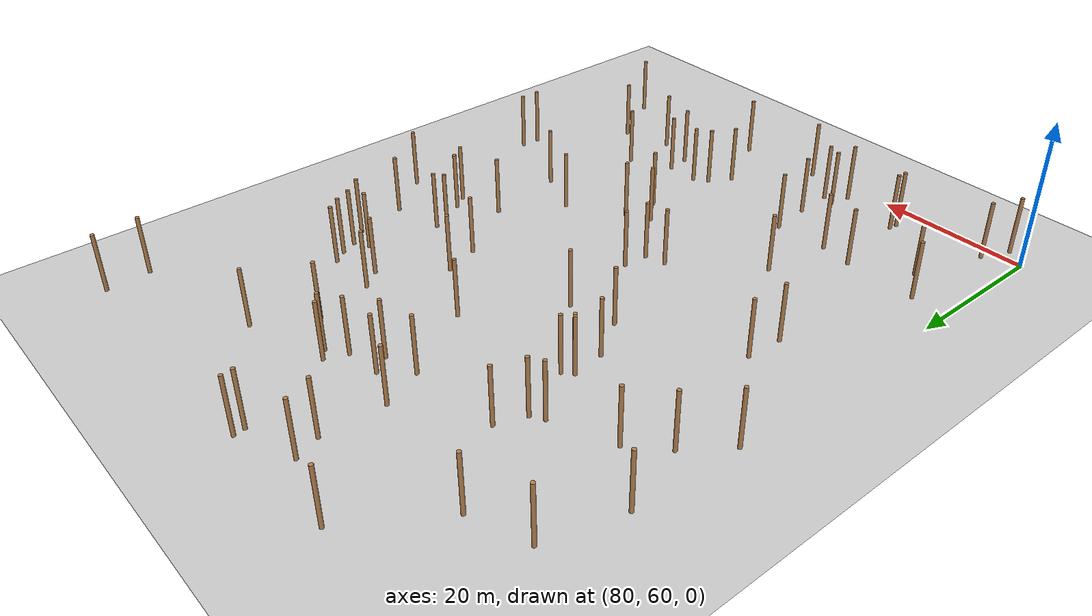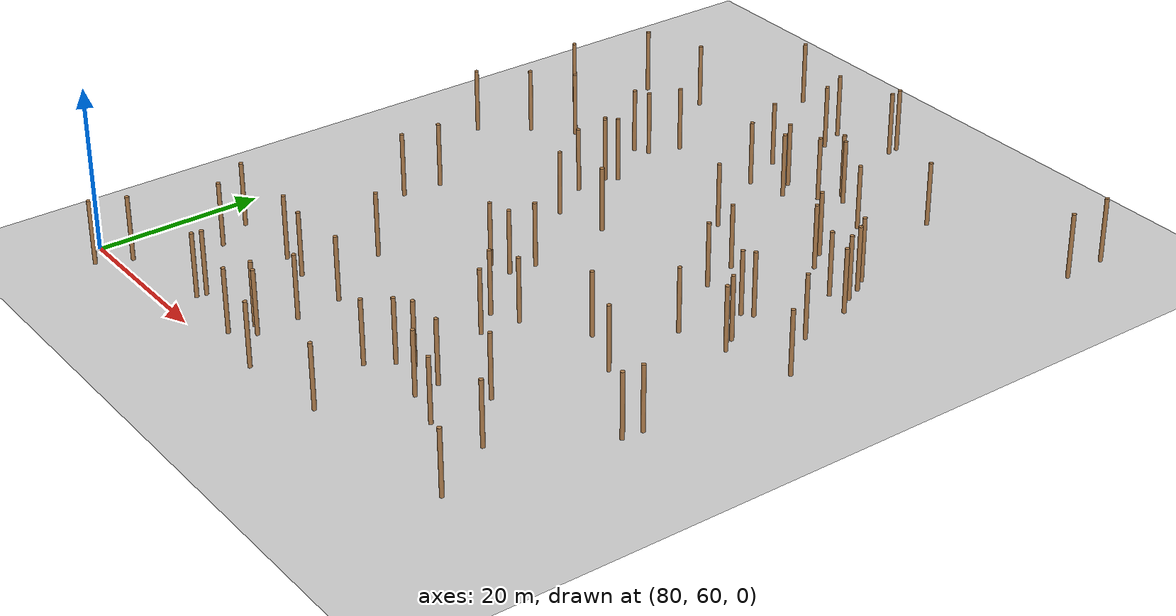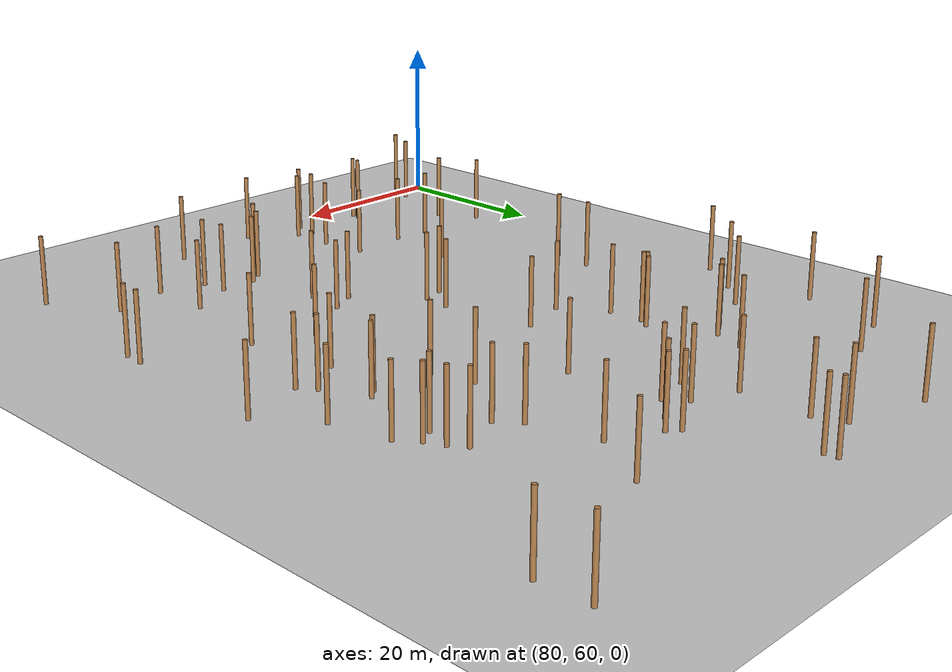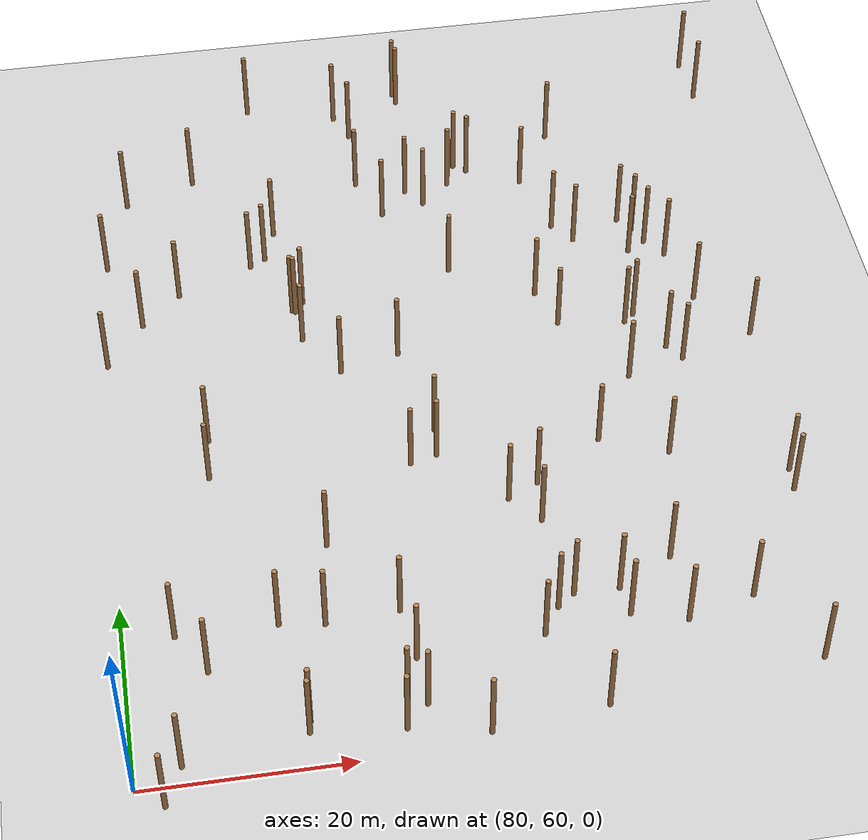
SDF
<sdf version="1.5">
 <world name="padure_tactica">
  <include><uri>model://sun</uri></include>
  <include><uri>model://ground_plane</uri></include>
  <model name="tree_9">
   <static>true</static>
   <pose>84.58 116.29 4.0 0 0 0</pose>
   <link name="link">
    <collision name="collision">
     <geometry><cylinder><radius>0.25</radius><length>8.0</length></cylinder></geometry>
    </collision>
    <visual name="visual">
     <geometry><cylinder><radius>0.25</radius><length>8.0</length></cylinder></geometry>
     <material>
      <script><uri>file://media/materials/scripts/gazebo.material</uri><name>Gazebo/Wood</name></script>
     </material>
    </visual>
   </link>
  </model>
  <model name="tree_64">
   <static>true</static>
   <pose>137.72 122.76 4.0 0 0 0</pose>
   <link name="link">
    <collision name="collision">
     <geometry><cylinder><radius>0.25</radius><length>8.0</length></cylinder></geometry>
    </collision>
    <visual name="visual">
     <geometry><cylinder><radius>0.25</radius><length>8.0</length></cylinder></geometry>
     <material>
      <script><uri>file://media/materials/scripts/gazebo.material</uri><name>Gazebo/Wood</name></script>
     </material>
    </visual>
   </link>
  </model>
  <model name="tree_92">
   <static>true</static>
   <pose>138.91 103.22 4.0 0 0 0</pose>
   <link name="link">
    <collision name="collision">
     <geometry><cylinder><radius>0.25</radius><length>8.0</length></cylinder></geometry>
    </collision>
    <visual name="visual">
     <geometry><cylinder><radius>0.25</radius><length>8.0</length></cylinder></geometry>
     <material>
      <script><uri>file://media/materials/scripts/gazebo.material</uri><name>Gazebo/Wood</name></script>
     </material>
    </visual>
   </link>
  </model>
  <model name="tree_94">
   <static>true</static>
   <pose>104.10 106.70 4.0 0 0 0</pose>
   <link name="link">
    <collision name="collision">
     <geometry><cylinder><radius>0.25</radius><length>8.0</length></cylinder></geometry>
    </collision>
    <visual name="visual">
     <geometry><cylinder><radius>0.25</radius><length>8.0</length></cylinder></geometry>
     <material>
      <script><uri>file://media/materials/scripts/gazebo.material</uri><name>Gazebo/Wood</name></script>
     </material>
    </visual>
   </link>
  </model>
  <model name="tree_140">
   <static>true</static>
   <pose>129.28 124.56 4.0 0 0 0</pose>
   <link name="link">
    <collision name="collision">
     <geometry><cylinder><radius>0.25</radius><length>8.0</length></cylinder></geometry>
    </collision>
    <visual name="visual">
     <geometry><cylinder><radius>0.25</radius><length>8.0</length></cylinder></geometry>
     <material>
      <script><uri>file://media/materials/scripts/gazebo.material</uri><name>Gazebo/Wood</name></script>
     </material>
    </visual>
   </link>
  </model>
  <model name="tree_146">
   <static>true</static>
   <pose>108.14 145.77 4.0 0 0 0</pose>
   <link name="link">
    <collision name="collision">
     <geometry><cylinder><radius>0.25</radius><length>8.0</length></cylinder></geometry>
    </collision>
    <visual name="visual">
     <geometry><cylinder><radius>0.25</radius><length>8.0</length></cylinder></geometry>
     <material>
      <script><uri>file://media/materials/scripts/gazebo.material</uri><name>Gazebo/Wood</name></script>
     </material>
    </visual>
   </link>
  </model>
  <model name="tree_151">
   <static>true</static>
   <pose>143.23 64.62 4.0 0 0 0</pose>
   <link name="link">
    <collision name="collision">
     <geometry><cylinder><radius>0.25</radius><length>8.0</length></cylinder></geometry>
    </collision>
    <visual name="visual">
     <geometry><cylinder><radius>0.25</radius><length>8.0</length></cylinder></geometry>
     <material>
      <script><uri>file://media/materials/scripts/gazebo.material</uri><name>Gazebo/Wood</name></script>
     </material>
    </visual>
   </link>
  </model>
  <model name="tree_164">
   <static>true</static>
   <pose>146.61 105.64 4.0 0 0 0</pose>
   <link name="link">
    <collision name="collision">
     <geometry><cylinder><radius>0.25</radius><length>8.0</length></cylinder></geometry>
    </collision>
    <visual name="visual">
     <geometry><cylinder><radius>0.25</radius><length>8.0</length></cylinder></geometry>
     <material>
      <script><uri>file://media/materials/scripts/gazebo.material</uri><name>Gazebo/Wood</name></script>
     </material>
    </visual>
   </link>
  </model>
  <model name="tree_186">
   <static>true</static>
   <pose>115.34 148.96 4.0 0 0 0</pose>
   <link name="link">
    <collision name="collision">
     <geometry><cylinder><radius>0.25</radius><length>8.0</length></cylinder></geometry>
    </collision>
    <visual name="visual">
     <geometry><cylinder><radius>0.25</radius><length>8.0</length></cylinder></geometry>
     <material>
      <script><uri>file://media/materials/scripts/gazebo.material</uri><name>Gazebo/Wood</name></script>
     </material>
    </visual>
   </link>
  </model>
  <model name="tree_189">
   <static>true</static>
   <pose>104.97 65.79 4.0 0 0 0</pose>
   <link name="link">
    <collision name="collision">
     <geometry><cylinder><radius>0.25</radius><length>8.0</length></cylinder></geometry>
    </collision>
    <visual name="visual">
     <geometry><cylinder><radius>0.25</radius><length>8.0</length></cylinder></geometry>
     <material>
      <script><uri>file://media/materials/scripts/gazebo.material</uri><name>Gazebo/Wood</name></script>
     </material>
    </visual>
   </link>
  </model>
  <model name="tree_194">
   <static>true</static>
   <pose>96.05 64.82 4.0 0 0 0</pose>
   <link name="link">
    <collision name="collision">
     <geometry><cylinder><radius>0.25</radius><length>8.0</length></cylinder></geometry>
    </collision>
    <visual name="visual">
     <geometry><cylinder><radius>0.25</radius><length>8.0</length></cylinder></geometry>
     <material>
      <script><uri>file://media/materials/scripts/gazebo.material</uri><name>Gazebo/Wood</name></script>
     </material>
    </visual>
   </link>
  </model>
  <model name="tree_212">
   <static>true</static>
   <pose>120.30 73.95 4.0 0 0 0</pose>
   <link name="link">
    <collision name="collision">
     <geometry><cylinder><radius>0.25</radius><length>8.0</length></cylinder></geometry>
    </collision>
    <visual name="visual">
     <geometry><cylinder><radius>0.25</radius><length>8.0</length></cylinder></geometry>
     <material>
      <script><uri>file://media/materials/scripts/gazebo.material</uri><name>Gazebo/Wood</name></script>
     </material>
    </visual>
   </link>
  </model>
  <model name="tree_213">
   <static>true</static>
   <pose>126.78 72.15 4.0 0 0 0</pose>
   <link name="link">
    <collision name="collision">
     <geometry><cylinder><radius>0.25</radius><length>8.0</length></cylinder></geometry>
    </collision>
    <visual name="visual">
     <geometry><cylinder><radius>0.25</radius><length>8.0</length></cylinder></geometry>
     <material>
      <script><uri>file://media/materials/scripts/gazebo.material</uri><name>Gazebo/Wood</name></script>
     </material>
    </visual>
   </link>
  </model>
  <model name="tree_227">
   <static>true</static>
   <pose>132.94 101.59 4.0 0 0 0</pose>
   <link name="link">
    <collision name="collision">
     <geometry><cylinder><radius>0.25</radius><length>8.0</length></cylinder></geometry>
    </collision>
    <visual name="visual">
     <geometry><cylinder><radius>0.25</radius><length>8.0</length></cylinder></geometry>
     <material>
      <script><uri>file://media/materials/scripts/gazebo.material</uri><name>Gazebo/Wood</name></script>
     </material>
    </visual>
   </link>
  </model>
  <model name="tree_252">
   <static>true</static>
   <pose>136.49 124.45 4.0 0 0 0</pose>
   <link name="link">
    <collision name="collision">
     <geometry><cylinder><radius>0.25</radius><length>8.0</length></cylinder></geometry>
    </collision>
    <visual name="visual">
     <geometry><cylinder><radius>0.25</radius><length>8.0</length></cylinder></geometry>
     <material>
      <script><uri>file://media/materials/scripts/gazebo.material</uri><name>Gazebo/Wood</name></script>
     </material>
    </visual>
   </link>
  </model>
  <model name="tree_254">
   <static>true</static>
   <pose>106.71 65.12 4.0 0 0 0</pose>
   <link name="link">
    <collision name="collision">
     <geometry><cylinder><radius>0.25</radius><length>8.0</length></cylinder></geometry>
    </collision>
    <visual name="visual">
     <geometry><cylinder><radius>0.25</radius><length>8.0</length></cylinder></geometry>
     <material>
      <script><uri>file://media/materials/scripts/gazebo.material</uri><name>Gazebo/Wood</name></script>
     </material>
    </visual>
   </link>
  </model>
  <model name="tree_282">
   <static>true</static>
   <pose>131.98 70.68 4.0 0 0 0</pose>
   <link name="link">
    <collision name="collision">
     <geometry><cylinder><radius>0.25</radius><length>8.0</length></cylinder></geometry>
    </collision>
    <visual name="visual">
     <geometry><cylinder><radius>0.25</radius><length>8.0</length></cylinder></geometry>
     <material>
      <script><uri>file://media/materials/scripts/gazebo.material</uri><name>Gazebo/Wood</name></script>
     </material>
    </visual>
   </link>
  </model>
  <model name="tree_295">
   <static>true</static>
   <pose>118.02 87.49 4.0 0 0 0</pose>
   <link name="link">
    <collision name="collision">
     <geometry><cylinder><radius>0.25</radius><length>8.0</length></cylinder></geometry>
    </collision>
    <visual name="visual">
     <geometry><cylinder><radius>0.25</radius><length>8.0</length></cylinder></geometry>
     <material>
      <script><uri>file://media/materials/scripts/gazebo.material</uri><name>Gazebo/Wood</name></script>
     </material>
    </visual>
   </link>
  </model>
  <model name="tree_299">
   <static>true</static>
   <pose>91.44 137.42 4.0 0 0 0</pose>
   <link name="link">
    <collision name="collision">
     <geometry><cylinder><radius>0.25</radius><length>8.0</length></cylinder></geometry>
    </collision>
    <visual name="visual">
     <geometry><cylinder><radius>0.25</radius><length>8.0</length></cylinder></geometry>
     <material>
      <script><uri>file://media/materials/scripts/gazebo.material</uri><name>Gazebo/Wood</name></script>
     </material>
    </visual>
   </link>
  </model>
  <model name="tree_317">
   <static>true</static>
   <pose>112.28 97.45 4.0 0 0 0</pose>
   <link name="link">
    <collision name="collision">
     <geometry><cylinder><radius>0.25</radius><length>8.0</length></cylinder></geometry>
    </collision>
    <visual name="visual">
     <geometry><cylinder><radius>0.25</radius><length>8.0</length></cylinder></geometry>
     <material>
      <script><uri>file://media/materials/scripts/gazebo.material</uri><name>Gazebo/Wood</name></script>
     </material>
    </visual>
   </link>
  </model>
  <model name="tree_323">
   <static>true</static>
   <pose>134.70 90.99 4.0 0 0 0</pose>
   <link name="link">
    <collision name="collision">
     <geometry><cylinder><radius>0.25</radius><length>8.0</length></cylinder></geometry>
    </collision>
    <visual name="visual">
     <geometry><cylinder><radius>0.25</radius><length>8.0</length></cylinder></geometry>
     <material>
      <script><uri>file://media/materials/scripts/gazebo.material</uri><name>Gazebo/Wood</name></script>
     </material>
    </visual>
   </link>
  </model>
  <model name="tree_336">
   <static>true</static>
   <pose>136.71 119.56 4.0 0 0 0</pose>
   <link name="link">
    <collision name="collision">
     <geometry><cylinder><radius>0.25</radius><length>8.0</length></cylinder></geometry>
    </collision>
    <visual name="visual">
     <geometry><cylinder><radius>0.25</radius><length>8.0</length></cylinder></geometry>
     <material>
      <script><uri>file://media/materials/scripts/gazebo.material</uri><name>Gazebo/Wood</name></script>
     </material>
    </visual>
   </link>
  </model>
  <model name="tree_360">
   <static>true</static>
   <pose>111.46 129.20 4.0 0 0 0</pose>
   <link name="link">
    <collision name="collision">
     <geometry><cylinder><radius>0.25</radius><length>8.0</length></cylinder></geometry>
    </collision>
    <visual name="visual">
     <geometry><cylinder><radius>0.25</radius><length>8.0</length></cylinder></geometry>
     <material>
      <script><uri>file://media/materials/scripts/gazebo.material</uri><name>Gazebo/Wood</name></script>
     </material>
    </visual>
   </link>
  </model>
  <model name="tree_373">
   <static>true</static>
   <pose>140.40 118.46 4.0 0 0 0</pose>
   <link name="link">
    <collision name="collision">
     <geometry><cylinder><radius>0.25</radius><length>8.0</length></cylinder></geometry>
    </collision>
    <visual name="visual">
     <geometry><cylinder><radius>0.25</radius><length>8.0</length></cylinder></geometry>
     <material>
      <script><uri>file://media/materials/scripts/gazebo.material</uri><name>Gazebo/Wood</name></script>
     </material>
    </visual>
   </link>
  </model>
  <model name="tree_415">
   <static>true</static>
   <pose>145.66 84.50 4.0 0 0 0</pose>
   <link name="link">
    <collision name="collision">
     <geometry><cylinder><radius>0.25</radius><length>8.0</length></cylinder></geometry>
    </collision>
    <visual name="visual">
     <geometry><cylinder><radius>0.25</radius><length>8.0</length></cylinder></geometry>
     <material>
      <script><uri>file://media/materials/scripts/gazebo.material</uri><name>Gazebo/Wood</name></script>
     </material>
    </visual>
   </link>
  </model>
  <model name="tree_430">
   <static>true</static>
   <pose>122.01 75.22 4.0 0 0 0</pose>
   <link name="link">
    <collision name="collision">
     <geometry><cylinder><radius>0.25</radius><length>8.0</length></cylinder></geometry>
    </collision>
    <visual name="visual">
     <geometry><cylinder><radius>0.25</radius><length>8.0</length></cylinder></geometry>
     <material>
      <script><uri>file://media/materials/scripts/gazebo.material</uri><name>Gazebo/Wood</name></script>
     </material>
    </visual>
   </link>
  </model>
  <model name="tree_479">
   <static>true</static>
   <pose>142.01 111.57 4.0 0 0 0</pose>
   <link name="link">
    <collision name="collision">
     <geometry><cylinder><radius>0.25</radius><length>8.0</length></cylinder></geometry>
    </collision>
    <visual name="visual">
     <geometry><cylinder><radius>0.25</radius><length>8.0</length></cylinder></geometry>
     <material>
      <script><uri>file://media/materials/scripts/gazebo.material</uri><name>Gazebo/Wood</name></script>
     </material>
    </visual>
   </link>
  </model>
  <model name="tree_480">
   <static>true</static>
   <pose>120.71 84.41 4.0 0 0 0</pose>
   <link name="link">
    <collision name="collision">
     <geometry><cylinder><radius>0.25</radius><length>8.0</length></cylinder></geometry>
    </collision>
    <visual name="visual">
     <geometry><cylinder><radius>0.25</radius><length>8.0</length></cylinder></geometry>
     <material>
      <script><uri>file://media/materials/scripts/gazebo.material</uri><name>Gazebo/Wood</name></script>
     </material>
    </visual>
   </link>
  </model>
  <model name="tree_481">
   <static>true</static>
   <pose>94.40 75.94 4.0 0 0 0</pose>
   <link name="link">
    <collision name="collision">
     <geometry><cylinder><radius>0.25</radius><length>8.0</length></cylinder></geometry>
    </collision>
    <visual name="visual">
     <geometry><cylinder><radius>0.25</radius><length>8.0</length></cylinder></geometry>
     <material>
      <script><uri>file://media/materials/scripts/gazebo.material</uri><name>Gazebo/Wood</name></script>
     </material>
    </visual>
   </link>
  </model>
  <model name="tree_502">
   <static>true</static>
   <pose>117.24 119.60 4.0 0 0 0</pose>
   <link name="link">
    <collision name="collision">
     <geometry><cylinder><radius>0.25</radius><length>8.0</length></cylinder></geometry>
    </collision>
    <visual name="visual">
     <geometry><cylinder><radius>0.25</radius><length>8.0</length></cylinder></geometry>
     <material>
      <script><uri>file://media/materials/scripts/gazebo.material</uri><name>Gazebo/Wood</name></script>
     </material>
    </visual>
   </link>
  </model>
  <model name="tree_508">
   <static>true</static>
   <pose>149.07 148.98 4.0 0 0 0</pose>
   <link name="link">
    <collision name="collision">
     <geometry><cylinder><radius>0.25</radius><length>8.0</length></cylinder></geometry>
    </collision>
    <visual name="visual">
     <geometry><cylinder><radius>0.25</radius><length>8.0</length></cylinder></geometry>
     <material>
      <script><uri>file://media/materials/scripts/gazebo.material</uri><name>Gazebo/Wood</name></script>
     </material>
    </visual>
   </link>
  </model>
  <model name="tree_515">
   <static>true</static>
   <pose>99.42 127.95 4.0 0 0 0</pose>
   <link name="link">
    <collision name="collision">
     <geometry><cylinder><radius>0.25</radius><length>8.0</length></cylinder></geometry>
    </collision>
    <visual name="visual">
     <geometry><cylinder><radius>0.25</radius><length>8.0</length></cylinder></geometry>
     <material>
      <script><uri>file://media/materials/scripts/gazebo.material</uri><name>Gazebo/Wood</name></script>
     </material>
    </visual>
   </link>
  </model>
  <model name="tree_538">
   <static>true</static>
   <pose>88.66 120.06 4.0 0 0 0</pose>
   <link name="link">
    <collision name="collision">
     <geometry><cylinder><radius>0.25</radius><length>8.0</length></cylinder></geometry>
    </collision>
    <visual name="visual">
     <geometry><cylinder><radius>0.25</radius><length>8.0</length></cylinder></geometry>
     <material>
      <script><uri>file://media/materials/scripts/gazebo.material</uri><name>Gazebo/Wood</name></script>
     </material>
    </visual>
   </link>
  </model>
  <model name="tree_539">
   <static>true</static>
   <pose>109.49 142.54 4.0 0 0 0</pose>
   <link name="link">
    <collision name="collision">
     <geometry><cylinder><radius>0.25</radius><length>8.0</length></cylinder></geometry>
    </collision>
    <visual name="visual">
     <geometry><cylinder><radius>0.25</radius><length>8.0</length></cylinder></geometry>
     <material>
      <script><uri>file://media/materials/scripts/gazebo.material</uri><name>Gazebo/Wood</name></script>
     </material>
    </visual>
   </link>
  </model>
  <model name="tree_555">
   <static>true</static>
   <pose>118.53 71.06 4.0 0 0 0</pose>
   <link name="link">
    <collision name="collision">
     <geometry><cylinder><radius>0.25</radius><length>8.0</length></cylinder></geometry>
    </collision>
    <visual name="visual">
     <geometry><cylinder><radius>0.25</radius><length>8.0</length></cylinder></geometry>
     <material>
      <script><uri>file://media/materials/scripts/gazebo.material</uri><name>Gazebo/Wood</name></script>
     </material>
    </visual>
   </link>
  </model>
  <model name="tree_582">
   <static>true</static>
   <pose>81.44 125.21 4.0 0 0 0</pose>
   <link name="link">
    <collision name="collision">
     <geometry><cylinder><radius>0.25</radius><length>8.0</length></cylinder></geometry>
    </collision>
    <visual name="visual">
     <geometry><cylinder><radius>0.25</radius><length>8.0</length></cylinder></geometry>
     <material>
      <script><uri>file://media/materials/scripts/gazebo.material</uri><name>Gazebo/Wood</name></script>
     </material>
    </visual>
   </link>
  </model>
  <model name="tree_583">
   <static>true</static>
   <pose>125.64 114.73 4.0 0 0 0</pose>
   <link name="link">
    <collision name="collision">
     <geometry><cylinder><radius>0.25</radius><length>8.0</length></cylinder></geometry>
    </collision>
    <visual name="visual">
     <geometry><cylinder><radius>0.25</radius><length>8.0</length></cylinder></geometry>
     <material>
      <script><uri>file://media/materials/scripts/gazebo.material</uri><name>Gazebo/Wood</name></script>
     </material>
    </visual>
   </link>
  </model>
  <model name="tree_635">
   <static>true</static>
   <pose>122.82 62.55 4.0 0 0 0</pose>
   <link name="link">
    <collision name="collision">
     <geometry><cylinder><radius>0.25</radius><length>8.0</length></cylinder></geometry>
    </collision>
    <visual name="visual">
     <geometry><cylinder><radius>0.25</radius><length>8.0</length></cylinder></geometry>
     <material>
      <script><uri>file://media/materials/scripts/gazebo.material</uri><name>Gazebo/Wood</name></script>
     </material>
    </visual>
   </link>
  </model>
  <model name="tree_644">
   <static>true</static>
   <pose>121.59 134.82 4.0 0 0 0</pose>
   <link name="link">
    <collision name="collision">
     <geometry><cylinder><radius>0.25</radius><length>8.0</length></cylinder></geometry>
    </collision>
    <visual name="visual">
     <geometry><cylinder><radius>0.25</radius><length>8.0</length></cylinder></geometry>
     <material>
      <script><uri>file://media/materials/scripts/gazebo.material</uri><name>Gazebo/Wood</name></script>
     </material>
    </visual>
   </link>
  </model>
  <model name="tree_700">
   <static>true</static>
   <pose>134.12 109.21 4.0 0 0 0</pose>
   <link name="link">
    <collision name="collision">
     <geometry><cylinder><radius>0.25</radius><length>8.0</length></cylinder></geometry>
    </collision>
    <visual name="visual">
     <geometry><cylinder><radius>0.25</radius><length>8.0</length></cylinder></geometry>
     <material>
      <script><uri>file://media/materials/scripts/gazebo.material</uri><name>Gazebo/Wood</name></script>
     </material>
    </visual>
   </link>
  </model>
  <model name="tree_710">
   <static>true</static>
   <pose>109.31 93.44 4.0 0 0 0</pose>
   <link name="link">
    <collision name="collision">
     <geometry><cylinder><radius>0.25</radius><length>8.0</length></cylinder></geometry>
    </collision>
    <visual name="visual">
     <geometry><cylinder><radius>0.25</radius><length>8.0</length></cylinder></geometry>
     <material>
      <script><uri>file://media/materials/scripts/gazebo.material</uri><name>Gazebo/Wood</name></script>
     </material>
    </visual>
   </link>
  </model>
  <model name="tree_711">
   <static>true</static>
   <pose>105.71 75.82 4.0 0 0 0</pose>
   <link name="link">
    <collision name="collision">
     <geometry><cylinder><radius>0.25</radius><length>8.0</length></cylinder></geometry>
    </collision>
    <visual name="visual">
     <geometry><cylinder><radius>0.25</radius><length>8.0</length></cylinder></geometry>
     <material>
      <script><uri>file://media/materials/scripts/gazebo.material</uri><name>Gazebo/Wood</name></script>
     </material>
    </visual>
   </link>
  </model>
  <model name="tree_720">
   <static>true</static>
   <pose>138.57 72.54 4.0 0 0 0</pose>
   <link name="link">
    <collision name="collision">
     <geometry><cylinder><radius>0.25</radius><length>8.0</length></cylinder></geometry>
    </collision>
    <visual name="visual">
     <geometry><cylinder><radius>0.25</radius><length>8.0</length></cylinder></geometry>
     <material>
      <script><uri>file://media/materials/scripts/gazebo.material</uri><name>Gazebo/Wood</name></script>
     </material>
    </visual>
   </link>
  </model>
  <model name="tree_724">
   <static>true</static>
   <pose>116.10 130.28 4.0 0 0 0</pose>
   <link name="link">
    <collision name="collision">
     <geometry><cylinder><radius>0.25</radius><length>8.0</length></cylinder></geometry>
    </collision>
    <visual name="visual">
     <geometry><cylinder><radius>0.25</radius><length>8.0</length></cylinder></geometry>
     <material>
      <script><uri>file://media/materials/scripts/gazebo.material</uri><name>Gazebo/Wood</name></script>
     </material>
    </visual>
   </link>
  </model>
  <model name="tree_730">
   <static>true</static>
   <pose>121.14 89.09 4.0 0 0 0</pose>
   <link name="link">
    <collision name="collision">
     <geometry><cylinder><radius>0.25</radius><length>8.0</length></cylinder></geometry>
    </collision>
    <visual name="visual">
     <geometry><cylinder><radius>0.25</radius><length>8.0</length></cylinder></geometry>
     <material>
      <script><uri>file://media/materials/scripts/gazebo.material</uri><name>Gazebo/Wood</name></script>
     </material>
    </visual>
   </link>
  </model>
  <model name="tree_732">
   <static>true</static>
   <pose>135.18 110.13 4.0 0 0 0</pose>
   <link name="link">
    <collision name="collision">
     <geometry><cylinder><radius>0.25</radius><length>8.0</length></cylinder></geometry>
    </collision>
    <visual name="visual">
     <geometry><cylinder><radius>0.25</radius><length>8.0</length></cylinder></geometry>
     <material>
      <script><uri>file://media/materials/scripts/gazebo.material</uri><name>Gazebo/Wood</name></script>
     </material>
    </visual>
   </link>
  </model>
  <model name="tree_740">
   <static>true</static>
   <pose>84.81 75.99 4.0 0 0 0</pose>
   <link name="link">
    <collision name="collision">
     <geometry><cylinder><radius>0.25</radius><length>8.0</length></cylinder></geometry>
    </collision>
    <visual name="visual">
     <geometry><cylinder><radius>0.25</radius><length>8.0</length></cylinder></geometry>
     <material>
      <script><uri>file://media/materials/scripts/gazebo.material</uri><name>Gazebo/Wood</name></script>
     </material>
    </visual>
   </link>
  </model>
  <model name="tree_752">
   <static>true</static>
   <pose>131.19 122.16 4.0 0 0 0</pose>
   <link name="link">
    <collision name="collision">
     <geometry><cylinder><radius>0.25</radius><length>8.0</length></cylinder></geometry>
    </collision>
    <visual name="visual">
     <geometry><cylinder><radius>0.25</radius><length>8.0</length></cylinder></geometry>
     <material>
      <script><uri>file://media/materials/scripts/gazebo.material</uri><name>Gazebo/Wood</name></script>
     </material>
    </visual>
   </link>
  </model>
  <model name="tree_757">
   <static>true</static>
   <pose>127.14 132.14 4.0 0 0 0</pose>
   <link name="link">
    <collision name="collision">
     <geometry><cylinder><radius>0.25</radius><length>8.0</length></cylinder></geometry>
    </collision>
    <visual name="visual">
     <geometry><cylinder><radius>0.25</radius><length>8.0</length></cylinder></geometry>
     <material>
      <script><uri>file://media/materials/scripts/gazebo.material</uri><name>Gazebo/Wood</name></script>
     </material>
    </visual>
   </link>
  </model>
  <model name="tree_758">
   <static>true</static>
   <pose>89.93 99.38 4.0 0 0 0</pose>
   <link name="link">
    <collision name="collision">
     <geometry><cylinder><radius>0.25</radius><length>8.0</length></cylinder></geometry>
    </collision>
    <visual name="visual">
     <geometry><cylinder><radius>0.25</radius><length>8.0</length></cylinder></geometry>
     <material>
      <script><uri>file://media/materials/scripts/gazebo.material</uri><name>Gazebo/Wood</name></script>
     </material>
    </visual>
   </link>
  </model>
  <model name="tree_759">
   <static>true</static>
   <pose>115.55 147.57 4.0 0 0 0</pose>
   <link name="link">
    <collision name="collision">
     <geometry><cylinder><radius>0.25</radius><length>8.0</length></cylinder></geometry>
    </collision>
    <visual name="visual">
     <geometry><cylinder><radius>0.25</radius><length>8.0</length></cylinder></geometry>
     <material>
      <script><uri>file://media/materials/scripts/gazebo.material</uri><name>Gazebo/Wood</name></script>
     </material>
    </visual>
   </link>
  </model>
  <model name="tree_772">
   <static>true</static>
   <pose>96.50 123.26 4.0 0 0 0</pose>
   <link name="link">
    <collision name="collision">
     <geometry><cylinder><radius>0.25</radius><length>8.0</length></cylinder></geometry>
    </collision>
    <visual name="visual">
     <geometry><cylinder><radius>0.25</radius><length>8.0</length></cylinder></geometry>
     <material>
      <script><uri>file://media/materials/scripts/gazebo.material</uri><name>Gazebo/Wood</name></script>
     </material>
    </visual>
   </link>
  </model>
  <model name="tree_785">
   <static>true</static>
   <pose>110.15 108.27 4.0 0 0 0</pose>
   <link name="link">
    <collision name="collision">
     <geometry><cylinder><radius>0.25</radius><length>8.0</length></cylinder></geometry>
    </collision>
    <visual name="visual">
     <geometry><cylinder><radius>0.25</radius><length>8.0</length></cylinder></geometry>
     <material>
      <script><uri>file://media/materials/scripts/gazebo.material</uri><name>Gazebo/Wood</name></script>
     </material>
    </visual>
   </link>
  </model>
  <model name="tree_789">
   <static>true</static>
   <pose>98.68 75.32 4.0 0 0 0</pose>
   <link name="link">
    <collision name="collision">
     <geometry><cylinder><radius>0.25</radius><length>8.0</length></cylinder></geometry>
    </collision>
    <visual name="visual">
     <geometry><cylinder><radius>0.25</radius><length>8.0</length></cylinder></geometry>
     <material>
      <script><uri>file://media/materials/scripts/gazebo.material</uri><name>Gazebo/Wood</name></script>
     </material>
    </visual>
   </link>
  </model>
  <model name="tree_802">
   <static>true</static>
   <pose>149.46 143.40 4.0 0 0 0</pose>
   <link name="link">
    <collision name="collision">
     <geometry><cylinder><radius>0.25</radius><length>8.0</length></cylinder></geometry>
    </collision>
    <visual name="visual">
     <geometry><cylinder><radius>0.25</radius><length>8.0</length></cylinder></geometry>
     <material>
      <script><uri>file://media/materials/scripts/gazebo.material</uri><name>Gazebo/Wood</name></script>
     </material>
    </visual>
   </link>
  </model>
  <model name="tree_808">
   <static>true</static>
   <pose>111.89 61.28 4.0 0 0 0</pose>
   <link name="link">
    <collision name="collision">
     <geometry><cylinder><radius>0.25</radius><length>8.0</length></cylinder></geometry>
    </collision>
    <visual name="visual">
     <geometry><cylinder><radius>0.25</radius><length>8.0</length></cylinder></geometry>
     <material>
      <script><uri>file://media/materials/scripts/gazebo.material</uri><name>Gazebo/Wood</name></script>
     </material>
    </visual>
   </link>
  </model>
  <model name="tree_822">
   <static>true</static>
   <pose>100.47 115.86 4.0 0 0 0</pose>
   <link name="link">
    <collision name="collision">
     <geometry><cylinder><radius>0.25</radius><length>8.0</length></cylinder></geometry>
    </collision>
    <visual name="visual">
     <geometry><cylinder><radius>0.25</radius><length>8.0</length></cylinder></geometry>
     <material>
      <script><uri>file://media/materials/scripts/gazebo.material</uri><name>Gazebo/Wood</name></script>
     </material>
    </visual>
   </link>
  </model>
  <model name="tree_835">
   <static>true</static>
   <pose>99.93 84.51 4.0 0 0 0</pose>
   <link name="link">
    <collision name="collision">
     <geometry><cylinder><radius>0.25</radius><length>8.0</length></cylinder></geometry>
    </collision>
    <visual name="visual">
     <geometry><cylinder><radius>0.25</radius><length>8.0</length></cylinder></geometry>
     <material>
      <script><uri>file://media/materials/scripts/gazebo.material</uri><name>Gazebo/Wood</name></script>
     </material>
    </visual>
   </link>
  </model>
  <model name="tree_860">
   <static>true</static>
   <pose>84.12 134.78 4.0 0 0 0</pose>
   <link name="link">
    <collision name="collision">
     <geometry><cylinder><radius>0.25</radius><length>8.0</length></cylinder></geometry>
    </collision>
    <visual name="visual">
     <geometry><cylinder><radius>0.25</radius><length>8.0</length></cylinder></geometry>
     <material>
      <script><uri>file://media/materials/scripts/gazebo.material</uri><name>Gazebo/Wood</name></script>
     </material>
    </visual>
   </link>
  </model>
  <model name="tree_880">
   <static>true</static>
   <pose>138.65 120.69 4.0 0 0 0</pose>
   <link name="link">
    <collision name="collision">
     <geometry><cylinder><radius>0.25</radius><length>8.0</length></cylinder></geometry>
    </collision>
    <visual name="visual">
     <geometry><cylinder><radius>0.25</radius><length>8.0</length></cylinder></geometry>
     <material>
      <script><uri>file://media/materials/scripts/gazebo.material</uri><name>Gazebo/Wood</name></script>
     </material>
    </visual>
   </link>
  </model>
  <model name="tree_894">
   <static>true</static>
   <pose>89.60 94.55 4.0 0 0 0</pose>
   <link name="link">
    <collision name="collision">
     <geometry><cylinder><radius>0.25</radius><length>8.0</length></cylinder></geometry>
    </collision>
    <visual name="visual">
     <geometry><cylinder><radius>0.25</radius><length>8.0</length></cylinder></geometry>
     <material>
      <script><uri>file://media/materials/scripts/gazebo.material</uri><name>Gazebo/Wood</name></script>
     </material>
    </visual>
   </link>
  </model>
  <model name="tree_906">
   <static>true</static>
   <pose>80.68 111.01 4.0 0 0 0</pose>
   <link name="link">
    <collision name="collision">
     <geometry><cylinder><radius>0.25</radius><length>8.0</length></cylinder></geometry>
    </collision>
    <visual name="visual">
     <geometry><cylinder><radius>0.25</radius><length>8.0</length></cylinder></geometry>
     <material>
      <script><uri>file://media/materials/scripts/gazebo.material</uri><name>Gazebo/Wood</name></script>
     </material>
    </visual>
   </link>
  </model>
  <model name="tree_945">
   <static>true</static>
   <pose>84.36 61.88 4.0 0 0 0</pose>
   <link name="link">
    <collision name="collision">
     <geometry><cylinder><radius>0.25</radius><length>8.0</length></cylinder></geometry>
    </collision>
    <visual name="visual">
     <geometry><cylinder><radius>0.25</radius><length>8.0</length></cylinder></geometry>
     <material>
      <script><uri>file://media/materials/scripts/gazebo.material</uri><name>Gazebo/Wood</name></script>
     </material>
    </visual>
   </link>
  </model>
  <model name="tree_946">
   <static>true</static>
   <pose>126.39 75.23 4.0 0 0 0</pose>
   <link name="link">
    <collision name="collision">
     <geometry><cylinder><radius>0.25</radius><length>8.0</length></cylinder></geometry>
    </collision>
    <visual name="visual">
     <geometry><cylinder><radius>0.25</radius><length>8.0</length></cylinder></geometry>
     <material>
      <script><uri>file://media/materials/scripts/gazebo.material</uri><name>Gazebo/Wood</name></script>
     </material>
    </visual>
   </link>
  </model>
  <model name="tree_947">
   <static>true</static>
   <pose>95.89 63.69 4.0 0 0 0</pose>
   <link name="link">
    <collision name="collision">
     <geometry><cylinder><radius>0.25</radius><length>8.0</length></cylinder></geometry>
    </collision>
    <visual name="visual">
     <geometry><cylinder><radius>0.25</radius><length>8.0</length></cylinder></geometry>
     <material>
      <script><uri>file://media/materials/scripts/gazebo.material</uri><name>Gazebo/Wood</name></script>
     </material>
    </visual>
   </link>
  </model>
  <model name="tree_966">
   <static>true</static>
   <pose>145.83 86.99 4.0 0 0 0</pose>
   <link name="link">
    <collision name="collision">
     <geometry><cylinder><radius>0.25</radius><length>8.0</length></cylinder></geometry>
    </collision>
    <visual name="visual">
     <geometry><cylinder><radius>0.25</radius><length>8.0</length></cylinder></geometry>
     <material>
      <script><uri>file://media/materials/scripts/gazebo.material</uri><name>Gazebo/Wood</name></script>
     </material>
    </visual>
   </link>
  </model>
  <model name="tree_973">
   <static>true</static>
   <pose>137.59 105.09 4.0 0 0 0</pose>
   <link name="link">
    <collision name="collision">
     <geometry><cylinder><radius>0.25</radius><length>8.0</length></cylinder></geometry>
    </collision>
    <visual name="visual">
     <geometry><cylinder><radius>0.25</radius><length>8.0</length></cylinder></geometry>
     <material>
      <script><uri>file://media/materials/scripts/gazebo.material</uri><name>Gazebo/Wood</name></script>
     </material>
    </visual>
   </link>
  </model>
  <model name="tree_976">
   <static>true</static>
   <pose>114.43 132.49 4.0 0 0 0</pose>
   <link name="link">
    <collision name="collision">
     <geometry><cylinder><radius>0.25</radius><length>8.0</length></cylinder></geometry>
    </collision>
    <visual name="visual">
     <geometry><cylinder><radius>0.25</radius><length>8.0</length></cylinder></geometry>
     <material>
      <script><uri>file://media/materials/scripts/gazebo.material</uri><name>Gazebo/Wood</name></script>
     </material>
    </visual>
   </link>
  </model>
  <model name="tree_993">
   <static>true</static>
   <pose>120.29 135.77 4.0 0 0 0</pose>
   <link name="link">
    <collision name="collision">
     <geometry><cylinder><radius>0.25</radius><length>8.0</length></cylinder></geometry>
    </collision>
    <visual name="visual">
     <geometry><cylinder><radius>0.25</radius><length>8.0</length></cylinder></geometry>
     <material>
      <script><uri>file://media/materials/scripts/gazebo.material</uri><name>Gazebo/Wood</name></script>
     </material>
    </visual>
   </link>
  </model>
  <model name="tree_1002">
   <static>true</static>
   <pose>104.51 62.80 4.0 0 0 0</pose>
   <link name="link">
    <collision name="collision">
     <geometry><cylinder><radius>0.25</radius><length>8.0</length></cylinder></geometry>
    </collision>
    <visual name="visual">
     <geometry><cylinder><radius>0.25</radius><length>8.0</length></cylinder></geometry>
     <material>
      <script><uri>file://media/materials/scripts/gazebo.material</uri><name>Gazebo/Wood</name></script>
     </material>
    </visual>
   </link>
  </model>
  <model name="tree_1004">
   <static>true</static>
   <pose>101.34 117.16 4.0 0 0 0</pose>
   <link name="link">
    <collision name="collision">
     <geometry><cylinder><radius>0.25</radius><length>8.0</length></cylinder></geometry>
    </collision>
    <visual name="visual">
     <geometry><cylinder><radius>0.25</radius><length>8.0</length></cylinder></geometry>
     <material>
      <script><uri>file://media/materials/scripts/gazebo.material</uri><name>Gazebo/Wood</name></script>
     </material>
    </visual>
   </link>
  </model>
  <model name="tree_1016">
   <static>true</static>
   <pose>109.21 134.48 4.0 0 0 0</pose>
   <link name="link">
    <collision name="collision">
     <geometry><cylinder><radius>0.25</radius><length>8.0</length></cylinder></geometry>
    </collision>
    <visual name="visual">
     <geometry><cylinder><radius>0.25</radius><length>8.0</length></cylinder></geometry>
     <material>
      <script><uri>file://media/materials/scripts/gazebo.material</uri><name>Gazebo/Wood</name></script>
     </material>
    </visual>
   </link>
  </model>
  <model name="tree_1022">
   <static>true</static>
   <pose>82.64 58.05 4.0 0 0 0</pose>
   <link name="link">
    <collision name="collision">
     <geometry><cylinder><radius>0.25</radius><length>8.0</length></cylinder></geometry>
    </collision>
    <visual name="visual">
     <geometry><cylinder><radius>0.25</radius><length>8.0</length></cylinder></geometry>
     <material>
      <script><uri>file://media/materials/scripts/gazebo.material</uri><name>Gazebo/Wood</name></script>
     </material>
    </visual>
   </link>
  </model>
  <model name="tree_1024">
   <static>true</static>
   <pose>112.00 94.16 4.0 0 0 0</pose>
   <link name="link">
    <collision name="collision">
     <geometry><cylinder><radius>0.25</radius><length>8.0</length></cylinder></geometry>
    </collision>
    <visual name="visual">
     <geometry><cylinder><radius>0.25</radius><length>8.0</length></cylinder></geometry>
     <material>
      <script><uri>file://media/materials/scripts/gazebo.material</uri><name>Gazebo/Wood</name></script>
     </material>
    </visual>
   </link>
  </model>
  <model name="tree_1049">
   <static>true</static>
   <pose>100.74 111.81 4.0 0 0 0</pose>
   <link name="link">
    <collision name="collision">
     <geometry><cylinder><radius>0.25</radius><length>8.0</length></cylinder></geometry>
    </collision>
    <visual name="visual">
     <geometry><cylinder><radius>0.25</radius><length>8.0</length></cylinder></geometry>
     <material>
      <script><uri>file://media/materials/scripts/gazebo.material</uri><name>Gazebo/Wood</name></script>
     </material>
    </visual>
   </link>
  </model>
  <model name="tree_1094">
   <static>true</static>
   <pose>119.20 133.03 4.0 0 0 0</pose>
   <link name="link">
    <collision name="collision">
     <geometry><cylinder><radius>0.25</radius><length>8.0</length></cylinder></geometry>
    </collision>
    <visual name="visual">
     <geometry><cylinder><radius>0.25</radius><length>8.0</length></cylinder></geometry>
     <material>
      <script><uri>file://media/materials/scripts/gazebo.material</uri><name>Gazebo/Wood</name></script>
     </material>
    </visual>
   </link>
  </model>
  <model name="tree_1098">
   <static>true</static>
   <pose>127.22 110.10 4.0 0 0 0</pose>
   <link name="link">
    <collision name="collision">
     <geometry><cylinder><radius>0.25</radius><length>8.0</length></cylinder></geometry>
    </collision>
    <visual name="visual">
     <geometry><cylinder><radius>0.25</radius><length>8.0</length></cylinder></geometry>
     <material>
      <script><uri>file://media/materials/scripts/gazebo.material</uri><name>Gazebo/Wood</name></script>
     </material>
    </visual>
   </link>
  </model>
  <model name="tree_1101">
   <static>true</static>
   <pose>128.14 93.67 4.0 0 0 0</pose>
   <link name="link">
    <collision name="collision">
     <geometry><cylinder><radius>0.25</radius><length>8.0</length></cylinder></geometry>
    </collision>
    <visual name="visual">
     <geometry><cylinder><radius>0.25</radius><length>8.0</length></cylinder></geometry>
     <material>
      <script><uri>file://media/materials/scripts/gazebo.material</uri><name>Gazebo/Wood</name></script>
     </material>
    </visual>
   </link>
  </model>
  <model name="tree_1112">
   <static>true</static>
   <pose>100.16 116.12 4.0 0 0 0</pose>
   <link name="link">
    <collision name="collision">
     <geometry><cylinder><radius>0.25</radius><length>8.0</length></cylinder></geometry>
    </collision>
    <visual name="visual">
     <geometry><cylinder><radius>0.25</radius><length>8.0</length></cylinder></geometry>
     <material>
      <script><uri>file://media/materials/scripts/gazebo.material</uri><name>Gazebo/Wood</name></script>
     </material>
    </visual>
   </link>
  </model>
  <model name="tree_1118">
   <static>true</static>
   <pose>106.45 70.24 4.0 0 0 0</pose>
   <link name="link">
    <collision name="collision">
     <geometry><cylinder><radius>0.25</radius><length>8.0</length></cylinder></geometry>
    </collision>
    <visual name="visual">
     <geometry><cylinder><radius>0.25</radius><length>8.0</length></cylinder></geometry>
     <material>
      <script><uri>file://media/materials/scripts/gazebo.material</uri><name>Gazebo/Wood</name></script>
     </material>
    </visual>
   </link>
  </model>
  <model name="tree_1136">
   <static>true</static>
   <pose>131.86 78.13 4.0 0 0 0</pose>
   <link name="link">
    <collision name="collision">
     <geometry><cylinder><radius>0.25</radius><length>8.0</length></cylinder></geometry>
    </collision>
    <visual name="visual">
     <geometry><cylinder><radius>0.25</radius><length>8.0</length></cylinder></geometry>
     <material>
      <script><uri>file://media/materials/scripts/gazebo.material</uri><name>Gazebo/Wood</name></script>
     </material>
    </visual>
   </link>
  </model>
  <model name="tree_1146">
   <static>true</static>
   <pose>98.61 148.37 4.0 0 0 0</pose>
   <link name="link">
    <collision name="collision">
     <geometry><cylinder><radius>0.25</radius><length>8.0</length></cylinder></geometry>
    </collision>
    <visual name="visual">
     <geometry><cylinder><radius>0.25</radius><length>8.0</length></cylinder></geometry>
     <material>
      <script><uri>file://media/materials/scripts/gazebo.material</uri><name>Gazebo/Wood</name></script>
     </material>
    </visual>
   </link>
  </model>
  <model name="tree_1164">
   <static>true</static>
   <pose>98.10 124.23 4.0 0 0 0</pose>
   <link name="link">
    <collision name="collision">
     <geometry><cylinder><radius>0.25</radius><length>8.0</length></cylinder></geometry>
    </collision>
    <visual name="visual">
     <geometry><cylinder><radius>0.25</radius><length>8.0</length></cylinder></geometry>
     <material>
      <script><uri>file://media/materials/scripts/gazebo.material</uri><name>Gazebo/Wood</name></script>
     </material>
    </visual>
   </link>
  </model>
  <model name="tree_1177">
   <static>true</static>
   <pose>87.51 71.59 4.0 0 0 0</pose>
   <link name="link">
    <collision name="collision">
     <geometry><cylinder><radius>0.25</radius><length>8.0</length></cylinder></geometry>
    </collision>
    <visual name="visual">
     <geometry><cylinder><radius>0.25</radius><length>8.0</length></cylinder></geometry>
     <material>
      <script><uri>file://media/materials/scripts/gazebo.material</uri><name>Gazebo/Wood</name></script>
     </material>
    </visual>
   </link>
  </model>
  <model name="tree_1194">
   <static>true</static>
   <pose>131.32 139.09 4.0 0 0 0</pose>
   <link name="link">
    <collision name="collision">
     <geometry><cylinder><radius>0.25</radius><length>8.0</length></cylinder></geometry>
    </collision>
    <visual name="visual">
     <geometry><cylinder><radius>0.25</radius><length>8.0</length></cylinder></geometry>
     <material>
      <script><uri>file://media/materials/scripts/gazebo.material</uri><name>Gazebo/Wood</name></script>
     </material>
    </visual>
   </link>
  </model>
 </world>
</sdf>
